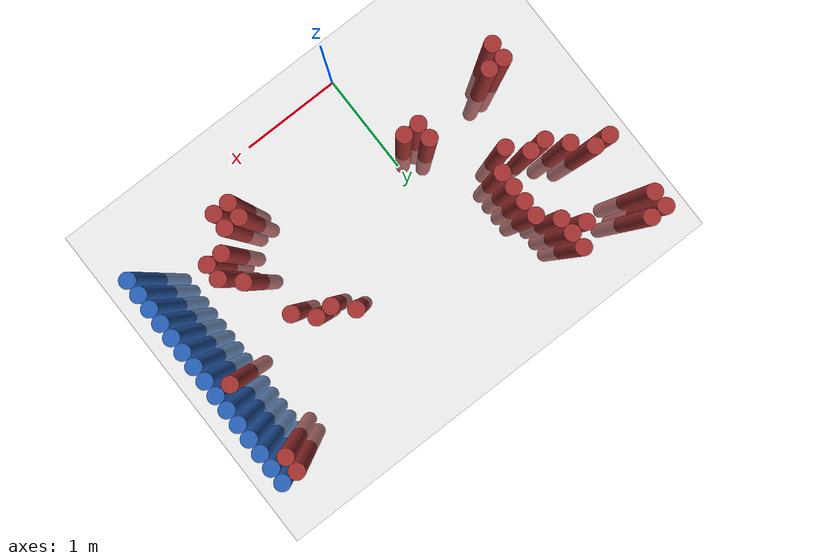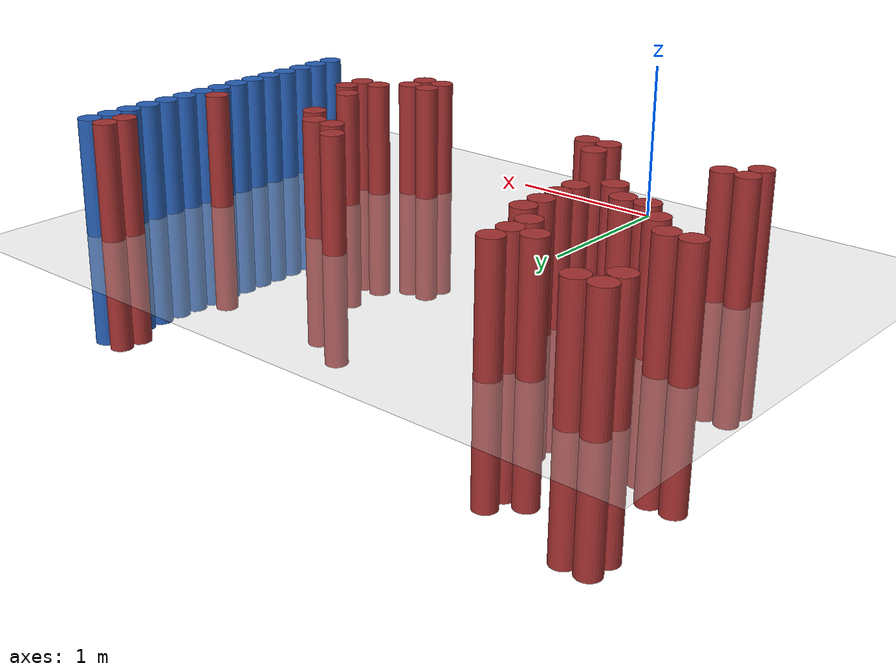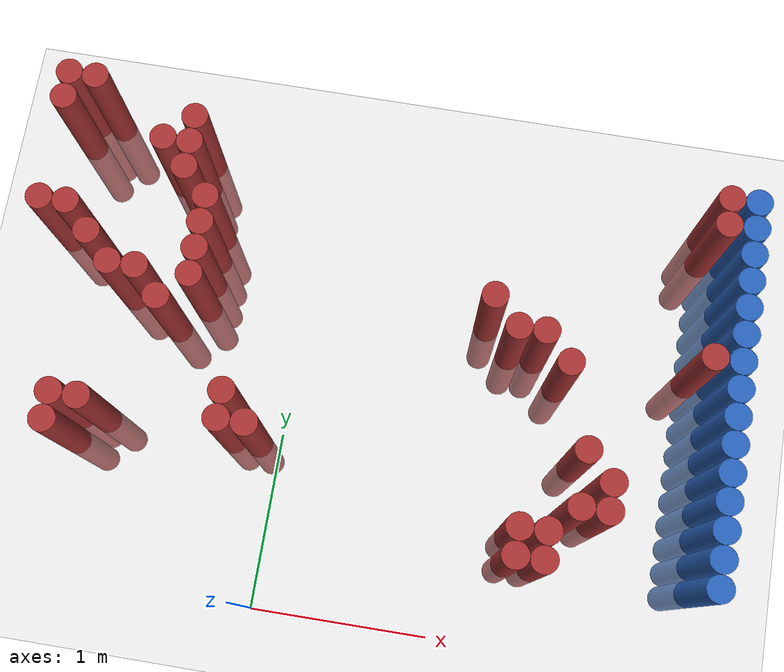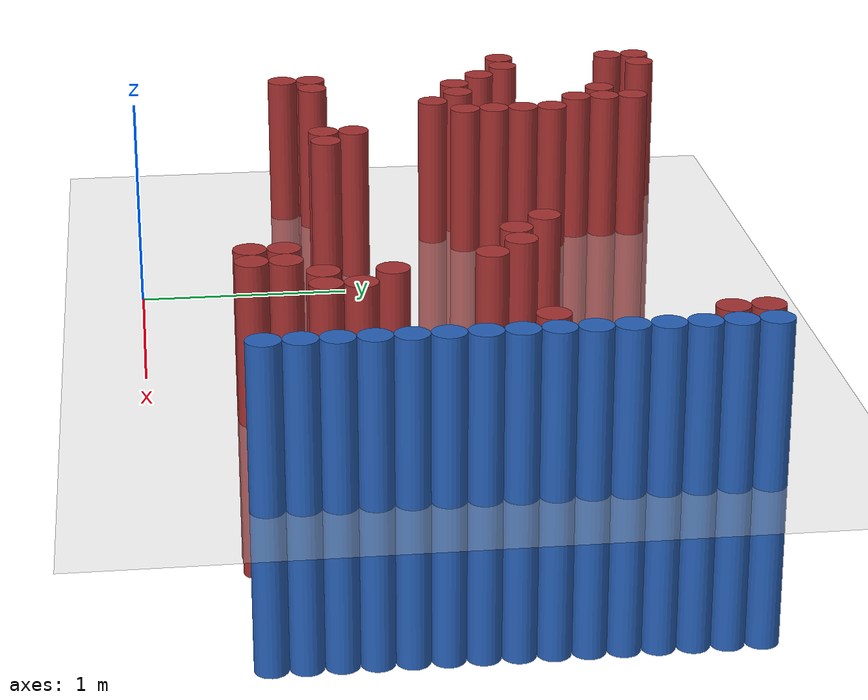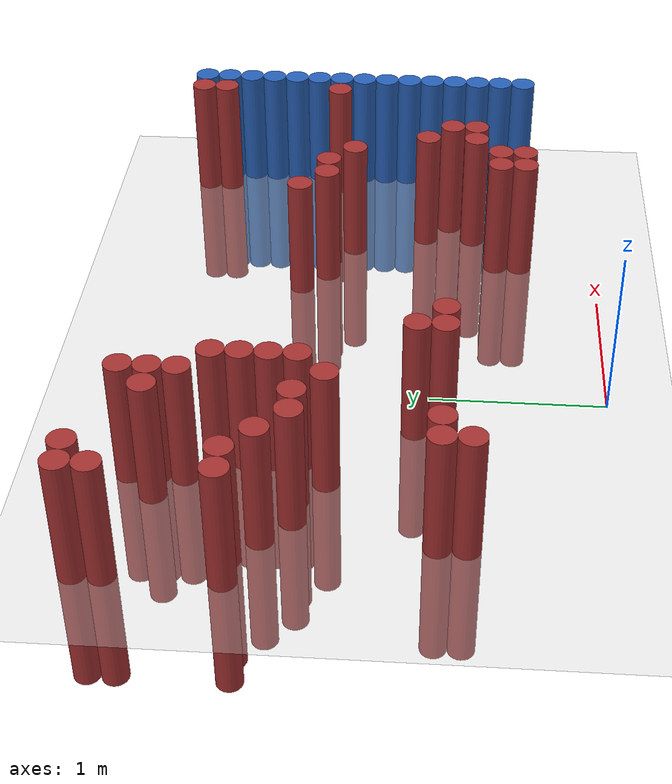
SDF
<sdf version="1.6">
 <world name="default">
  <model name="ground_plane">
   <static>1</static>
   <link name="link">
    <collision name="collision">
     <geometry><plane><normal>0 0 1</normal><size>100 100</size></plane></geometry>
     <surface><friction><ode><mu>100</mu><mu2>50</mu2></ode></friction></surface>
    </collision>
    <visual name="visual">
     <cast_shadows>0</cast_shadows>
     <geometry><plane><normal>0 0 1</normal><size>100 100</size></plane></geometry>
     <material>
      <script><uri>file://media/materials/scripts/gazebo.material</uri><name>Gazebo/Grey</name></script>
     </material>
    </visual>
   </link>
  </model>
  <model name="unit_cylinder_156">
   <static>1</static>
   <pose>-1.475000 1.975000 0.000000 0.000000 0.000000 0.000000</pose>
   <link name="link">
    <inertial>
     <mass>1</mass>
     <inertia><ixx>0.145833</ixx><ixy>0</ixy><ixz>0</ixz><iyy>0.145833</iyy><iyz>0</iyz><izz>0.125</izz></inertia>
    </inertial>
    <collision name="collision">
     <geometry><cylinder><radius>0.075000</radius><length>1.5</length></cylinder></geometry>
    </collision>
    <visual name="visual">
     <geometry><cylinder><radius>0.075000</radius><length>1.5</length></cylinder></geometry>
     <material>
      <ambient>0.648000 0.192000 0.192000 1</ambient>
      <diffuse>0.648000 0.192000 0.192000 1</diffuse>
     </material>
     <material>
      <script><name>Gazebo/Grey</name><uri>file://media/materials/scripts/gazebo.material</uri></script>
     </material>
    </visual>
   </link>
  </model>
  <model name="unit_cylinder_157">
   <static>1</static>
   <pose>-1.475000 2.575000 0.000000 0.000000 0.000000 0.000000</pose>
   <link name="link">
    <inertial>
     <mass>1</mass>
     <inertia><ixx>0.145833</ixx><ixy>0</ixy><ixz>0</ixz><iyy>0.145833</iyy><iyz>0</iyz><izz>0.125</izz></inertia>
    </inertial>
    <collision name="collision">
     <geometry><cylinder><radius>0.075000</radius><length>1.5</length></cylinder></geometry>
    </collision>
    <visual name="visual">
     <geometry><cylinder><radius>0.075000</radius><length>1.5</length></cylinder></geometry>
     <material>
      <ambient>0.648000 0.192000 0.192000 1</ambient>
      <diffuse>0.648000 0.192000 0.192000 1</diffuse>
     </material>
     <material>
      <script><name>Gazebo/Grey</name><uri>file://media/materials/scripts/gazebo.material</uri></script>
     </material>
    </visual>
   </link>
  </model>
  <model name="unit_cylinder_158">
   <static>1</static>
   <pose>-1.475000 2.725000 0.000000 0.000000 0.000000 0.000000</pose>
   <link name="link">
    <inertial>
     <mass>1</mass>
     <inertia><ixx>0.145833</ixx><ixy>0</ixy><ixz>0</ixz><iyy>0.145833</iyy><iyz>0</iyz><izz>0.125</izz></inertia>
    </inertial>
    <collision name="collision">
     <geometry><cylinder><radius>0.075000</radius><length>1.5</length></cylinder></geometry>
    </collision>
    <visual name="visual">
     <geometry><cylinder><radius>0.075000</radius><length>1.5</length></cylinder></geometry>
     <material>
      <ambient>0.648000 0.192000 0.192000 1</ambient>
      <diffuse>0.648000 0.192000 0.192000 1</diffuse>
     </material>
     <material>
      <script><name>Gazebo/Grey</name><uri>file://media/materials/scripts/gazebo.material</uri></script>
     </material>
    </visual>
   </link>
  </model>
  <model name="unit_cylinder_162">
   <static>1</static>
   <pose>-1.325000 1.975000 0.000000 0.000000 0.000000 0.000000</pose>
   <link name="link">
    <inertial>
     <mass>1</mass>
     <inertia><ixx>0.145833</ixx><ixy>0</ixy><ixz>0</ixz><iyy>0.145833</iyy><iyz>0</iyz><izz>0.125</izz></inertia>
    </inertial>
    <collision name="collision">
     <geometry><cylinder><radius>0.075000</radius><length>1.5</length></cylinder></geometry>
    </collision>
    <visual name="visual">
     <geometry><cylinder><radius>0.075000</radius><length>1.5</length></cylinder></geometry>
     <material>
      <ambient>0.648000 0.192000 0.192000 1</ambient>
      <diffuse>0.648000 0.192000 0.192000 1</diffuse>
     </material>
     <material>
      <script><name>Gazebo/Grey</name><uri>file://media/materials/scripts/gazebo.material</uri></script>
     </material>
    </visual>
   </link>
  </model>
  <model name="unit_cylinder_163">
   <static>1</static>
   <pose>-1.325000 2.725000 0.000000 0.000000 0.000000 0.000000</pose>
   <link name="link">
    <inertial>
     <mass>1</mass>
     <inertia><ixx>0.145833</ixx><ixy>0</ixy><ixz>0</ixz><iyy>0.145833</iyy><iyz>0</iyz><izz>0.125</izz></inertia>
    </inertial>
    <collision name="collision">
     <geometry><cylinder><radius>0.075000</radius><length>1.5</length></cylinder></geometry>
    </collision>
    <visual name="visual">
     <geometry><cylinder><radius>0.075000</radius><length>1.5</length></cylinder></geometry>
     <material>
      <ambient>0.648000 0.192000 0.192000 1</ambient>
      <diffuse>0.648000 0.192000 0.192000 1</diffuse>
     </material>
     <material>
      <script><name>Gazebo/Grey</name><uri>file://media/materials/scripts/gazebo.material</uri></script>
     </material>
    </visual>
   </link>
  </model>
  <model name="unit_cylinder_165">
   <static>1</static>
   <pose>-1.175000 0.775000 0.000000 0.000000 0.000000 0.000000</pose>
   <link name="link">
    <inertial>
     <mass>1</mass>
     <inertia><ixx>0.145833</ixx><ixy>0</ixy><ixz>0</ixz><iyy>0.145833</iyy><iyz>0</iyz><izz>0.125</izz></inertia>
    </inertial>
    <collision name="collision">
     <geometry><cylinder><radius>0.075000</radius><length>1.5</length></cylinder></geometry>
    </collision>
    <visual name="visual">
     <geometry><cylinder><radius>0.075000</radius><length>1.5</length></cylinder></geometry>
     <material>
      <ambient>0.648000 0.192000 0.192000 1</ambient>
      <diffuse>0.648000 0.192000 0.192000 1</diffuse>
     </material>
     <material>
      <script><name>Gazebo/Grey</name><uri>file://media/materials/scripts/gazebo.material</uri></script>
     </material>
    </visual>
   </link>
  </model>
  <model name="unit_cylinder_166">
   <static>1</static>
   <pose>-1.175000 0.925000 0.000000 0.000000 0.000000 0.000000</pose>
   <link name="link">
    <inertial>
     <mass>1</mass>
     <inertia><ixx>0.145833</ixx><ixy>0</ixy><ixz>0</ixz><iyy>0.145833</iyy><iyz>0</iyz><izz>0.125</izz></inertia>
    </inertial>
    <collision name="collision">
     <geometry><cylinder><radius>0.075000</radius><length>1.5</length></cylinder></geometry>
    </collision>
    <visual name="visual">
     <geometry><cylinder><radius>0.075000</radius><length>1.5</length></cylinder></geometry>
     <material>
      <ambient>0.648000 0.192000 0.192000 1</ambient>
      <diffuse>0.648000 0.192000 0.192000 1</diffuse>
     </material>
     <material>
      <script><name>Gazebo/Grey</name><uri>file://media/materials/scripts/gazebo.material</uri></script>
     </material>
    </visual>
   </link>
  </model>
  <model name="unit_cylinder_167">
   <static>1</static>
   <pose>-1.175000 1.825000 0.000000 0.000000 0.000000 0.000000</pose>
   <link name="link">
    <inertial>
     <mass>1</mass>
     <inertia><ixx>0.145833</ixx><ixy>0</ixy><ixz>0</ixz><iyy>0.145833</iyy><iyz>0</iyz><izz>0.125</izz></inertia>
    </inertial>
    <collision name="collision">
     <geometry><cylinder><radius>0.075000</radius><length>1.5</length></cylinder></geometry>
    </collision>
    <visual name="visual">
     <geometry><cylinder><radius>0.075000</radius><length>1.5</length></cylinder></geometry>
     <material>
      <ambient>0.648000 0.192000 0.192000 1</ambient>
      <diffuse>0.648000 0.192000 0.192000 1</diffuse>
     </material>
     <material>
      <script><name>Gazebo/Grey</name><uri>file://media/materials/scripts/gazebo.material</uri></script>
     </material>
    </visual>
   </link>
  </model>
  <model name="unit_cylinder_169">
   <static>1</static>
   <pose>-1.025000 0.925000 0.000000 0.000000 0.000000 0.000000</pose>
   <link name="link">
    <inertial>
     <mass>1</mass>
     <inertia><ixx>0.145833</ixx><ixy>0</ixy><ixz>0</ixz><iyy>0.145833</iyy><iyz>0</iyz><izz>0.125</izz></inertia>
    </inertial>
    <collision name="collision">
     <geometry><cylinder><radius>0.075000</radius><length>1.5</length></cylinder></geometry>
    </collision>
    <visual name="visual">
     <geometry><cylinder><radius>0.075000</radius><length>1.5</length></cylinder></geometry>
     <material>
      <ambient>0.648000 0.192000 0.192000 1</ambient>
      <diffuse>0.648000 0.192000 0.192000 1</diffuse>
     </material>
     <material>
      <script><name>Gazebo/Grey</name><uri>file://media/materials/scripts/gazebo.material</uri></script>
     </material>
    </visual>
   </link>
  </model>
  <model name="unit_cylinder_170">
   <static>1</static>
   <pose>-1.025000 1.675000 0.000000 0.000000 0.000000 0.000000</pose>
   <link name="link">
    <inertial>
     <mass>1</mass>
     <inertia><ixx>0.145833</ixx><ixy>0</ixy><ixz>0</ixz><iyy>0.145833</iyy><iyz>0</iyz><izz>0.125</izz></inertia>
    </inertial>
    <collision name="collision">
     <geometry><cylinder><radius>0.075000</radius><length>1.5</length></cylinder></geometry>
    </collision>
    <visual name="visual">
     <geometry><cylinder><radius>0.075000</radius><length>1.5</length></cylinder></geometry>
     <material>
      <ambient>0.648000 0.192000 0.192000 1</ambient>
      <diffuse>0.648000 0.192000 0.192000 1</diffuse>
     </material>
     <material>
      <script><name>Gazebo/Grey</name><uri>file://media/materials/scripts/gazebo.material</uri></script>
     </material>
    </visual>
   </link>
  </model>
  <model name="unit_cylinder_174">
   <static>1</static>
   <pose>-0.875000 1.675000 0.000000 0.000000 0.000000 0.000000</pose>
   <link name="link">
    <inertial>
     <mass>1</mass>
     <inertia><ixx>0.145833</ixx><ixy>0</ixy><ixz>0</ixz><iyy>0.145833</iyy><iyz>0</iyz><izz>0.125</izz></inertia>
    </inertial>
    <collision name="collision">
     <geometry><cylinder><radius>0.075000</radius><length>1.5</length></cylinder></geometry>
    </collision>
    <visual name="visual">
     <geometry><cylinder><radius>0.075000</radius><length>1.5</length></cylinder></geometry>
     <material>
      <ambient>0.648000 0.192000 0.192000 1</ambient>
      <diffuse>0.648000 0.192000 0.192000 1</diffuse>
     </material>
     <material>
      <script><name>Gazebo/Grey</name><uri>file://media/materials/scripts/gazebo.material</uri></script>
     </material>
    </visual>
   </link>
  </model>
  <model name="unit_cylinder_175">
   <static>1</static>
   <pose>-0.875000 2.425000 0.000000 0.000000 0.000000 0.000000</pose>
   <link name="link">
    <inertial>
     <mass>1</mass>
     <inertia><ixx>0.145833</ixx><ixy>0</ixy><ixz>0</ixz><iyy>0.145833</iyy><iyz>0</iyz><izz>0.125</izz></inertia>
    </inertial>
    <collision name="collision">
     <geometry><cylinder><radius>0.075000</radius><length>1.5</length></cylinder></geometry>
    </collision>
    <visual name="visual">
     <geometry><cylinder><radius>0.075000</radius><length>1.5</length></cylinder></geometry>
     <material>
      <ambient>0.648000 0.192000 0.192000 1</ambient>
      <diffuse>0.648000 0.192000 0.192000 1</diffuse>
     </material>
     <material>
      <script><name>Gazebo/Grey</name><uri>file://media/materials/scripts/gazebo.material</uri></script>
     </material>
    </visual>
   </link>
  </model>
  <model name="unit_cylinder_178">
   <static>1</static>
   <pose>-0.725000 1.525000 0.000000 0.000000 0.000000 0.000000</pose>
   <link name="link">
    <inertial>
     <mass>1</mass>
     <inertia><ixx>0.145833</ixx><ixy>0</ixy><ixz>0</ixz><iyy>0.145833</iyy><iyz>0</iyz><izz>0.125</izz></inertia>
    </inertial>
    <collision name="collision">
     <geometry><cylinder><radius>0.075000</radius><length>1.5</length></cylinder></geometry>
    </collision>
    <visual name="visual">
     <geometry><cylinder><radius>0.075000</radius><length>1.5</length></cylinder></geometry>
     <material>
      <ambient>0.648000 0.192000 0.192000 1</ambient>
      <diffuse>0.648000 0.192000 0.192000 1</diffuse>
     </material>
     <material>
      <script><name>Gazebo/Grey</name><uri>file://media/materials/scripts/gazebo.material</uri></script>
     </material>
    </visual>
   </link>
  </model>
  <model name="unit_cylinder_179">
   <static>1</static>
   <pose>-0.725000 2.275000 0.000000 0.000000 0.000000 0.000000</pose>
   <link name="link">
    <inertial>
     <mass>1</mass>
     <inertia><ixx>0.145833</ixx><ixy>0</ixy><ixz>0</ixz><iyy>0.145833</iyy><iyz>0</iyz><izz>0.125</izz></inertia>
    </inertial>
    <collision name="collision">
     <geometry><cylinder><radius>0.075000</radius><length>1.5</length></cylinder></geometry>
    </collision>
    <visual name="visual">
     <geometry><cylinder><radius>0.075000</radius><length>1.5</length></cylinder></geometry>
     <material>
      <ambient>0.648000 0.192000 0.192000 1</ambient>
      <diffuse>0.648000 0.192000 0.192000 1</diffuse>
     </material>
     <material>
      <script><name>Gazebo/Grey</name><uri>file://media/materials/scripts/gazebo.material</uri></script>
     </material>
    </visual>
   </link>
  </model>
  <model name="unit_cylinder_180">
   <static>1</static>
   <pose>-0.725000 2.425000 0.000000 0.000000 0.000000 0.000000</pose>
   <link name="link">
    <inertial>
     <mass>1</mass>
     <inertia><ixx>0.145833</ixx><ixy>0</ixy><ixz>0</ixz><iyy>0.145833</iyy><iyz>0</iyz><izz>0.125</izz></inertia>
    </inertial>
    <collision name="collision">
     <geometry><cylinder><radius>0.075000</radius><length>1.5</length></cylinder></geometry>
    </collision>
    <visual name="visual">
     <geometry><cylinder><radius>0.075000</radius><length>1.5</length></cylinder></geometry>
     <material>
      <ambient>0.648000 0.192000 0.192000 1</ambient>
      <diffuse>0.648000 0.192000 0.192000 1</diffuse>
     </material>
     <material>
      <script><name>Gazebo/Grey</name><uri>file://media/materials/scripts/gazebo.material</uri></script>
     </material>
    </visual>
   </link>
  </model>
  <model name="unit_cylinder_181">
   <static>1</static>
   <pose>-0.725000 2.575000 0.000000 0.000000 0.000000 0.000000</pose>
   <link name="link">
    <inertial>
     <mass>1</mass>
     <inertia><ixx>0.145833</ixx><ixy>0</ixy><ixz>0</ixz><iyy>0.145833</iyy><iyz>0</iyz><izz>0.125</izz></inertia>
    </inertial>
    <collision name="collision">
     <geometry><cylinder><radius>0.075000</radius><length>1.5</length></cylinder></geometry>
    </collision>
    <visual name="visual">
     <geometry><cylinder><radius>0.075000</radius><length>1.5</length></cylinder></geometry>
     <material>
      <ambient>0.648000 0.192000 0.192000 1</ambient>
      <diffuse>0.648000 0.192000 0.192000 1</diffuse>
     </material>
     <material>
      <script><name>Gazebo/Grey</name><uri>file://media/materials/scripts/gazebo.material</uri></script>
     </material>
    </visual>
   </link>
  </model>
  <model name="unit_cylinder_183">
   <static>1</static>
   <pose>-0.575000 1.675000 0.000000 0.000000 0.000000 0.000000</pose>
   <link name="link">
    <inertial>
     <mass>1</mass>
     <inertia><ixx>0.145833</ixx><ixy>0</ixy><ixz>0</ixz><iyy>0.145833</iyy><iyz>0</iyz><izz>0.125</izz></inertia>
    </inertial>
    <collision name="collision">
     <geometry><cylinder><radius>0.075000</radius><length>1.5</length></cylinder></geometry>
    </collision>
    <visual name="visual">
     <geometry><cylinder><radius>0.075000</radius><length>1.5</length></cylinder></geometry>
     <material>
      <ambient>0.648000 0.192000 0.192000 1</ambient>
      <diffuse>0.648000 0.192000 0.192000 1</diffuse>
     </material>
     <material>
      <script><name>Gazebo/Grey</name><uri>file://media/materials/scripts/gazebo.material</uri></script>
     </material>
    </visual>
   </link>
  </model>
  <model name="unit_cylinder_184">
   <static>1</static>
   <pose>-0.575000 1.825000 0.000000 0.000000 0.000000 0.000000</pose>
   <link name="link">
    <inertial>
     <mass>1</mass>
     <inertia><ixx>0.145833</ixx><ixy>0</ixy><ixz>0</ixz><iyy>0.145833</iyy><iyz>0</iyz><izz>0.125</izz></inertia>
    </inertial>
    <collision name="collision">
     <geometry><cylinder><radius>0.075000</radius><length>1.5</length></cylinder></geometry>
    </collision>
    <visual name="visual">
     <geometry><cylinder><radius>0.075000</radius><length>1.5</length></cylinder></geometry>
     <material>
      <ambient>0.648000 0.192000 0.192000 1</ambient>
      <diffuse>0.648000 0.192000 0.192000 1</diffuse>
     </material>
     <material>
      <script><name>Gazebo/Grey</name><uri>file://media/materials/scripts/gazebo.material</uri></script>
     </material>
    </visual>
   </link>
  </model>
  <model name="unit_cylinder_185">
   <static>1</static>
   <pose>-0.575000 1.975000 0.000000 0.000000 0.000000 0.000000</pose>
   <link name="link">
    <inertial>
     <mass>1</mass>
     <inertia><ixx>0.145833</ixx><ixy>0</ixy><ixz>0</ixz><iyy>0.145833</iyy><iyz>0</iyz><izz>0.125</izz></inertia>
    </inertial>
    <collision name="collision">
     <geometry><cylinder><radius>0.075000</radius><length>1.5</length></cylinder></geometry>
    </collision>
    <visual name="visual">
     <geometry><cylinder><radius>0.075000</radius><length>1.5</length></cylinder></geometry>
     <material>
      <ambient>0.648000 0.192000 0.192000 1</ambient>
      <diffuse>0.648000 0.192000 0.192000 1</diffuse>
     </material>
     <material>
      <script><name>Gazebo/Grey</name><uri>file://media/materials/scripts/gazebo.material</uri></script>
     </material>
    </visual>
   </link>
  </model>
  <model name="unit_cylinder_186">
   <static>1</static>
   <pose>-0.575000 2.125000 0.000000 0.000000 0.000000 0.000000</pose>
   <link name="link">
    <inertial>
     <mass>1</mass>
     <inertia><ixx>0.145833</ixx><ixy>0</ixy><ixz>0</ixz><iyy>0.145833</iyy><iyz>0</iyz><izz>0.125</izz></inertia>
    </inertial>
    <collision name="collision">
     <geometry><cylinder><radius>0.075000</radius><length>1.5</length></cylinder></geometry>
    </collision>
    <visual name="visual">
     <geometry><cylinder><radius>0.075000</radius><length>1.5</length></cylinder></geometry>
     <material>
      <ambient>0.648000 0.192000 0.192000 1</ambient>
      <diffuse>0.648000 0.192000 0.192000 1</diffuse>
     </material>
     <material>
      <script><name>Gazebo/Grey</name><uri>file://media/materials/scripts/gazebo.material</uri></script>
     </material>
    </visual>
   </link>
  </model>
  <model name="unit_cylinder_187">
   <static>1</static>
   <pose>-0.275000 0.925000 0.000000 0.000000 0.000000 0.000000</pose>
   <link name="link">
    <inertial>
     <mass>1</mass>
     <inertia><ixx>0.145833</ixx><ixy>0</ixy><ixz>0</ixz><iyy>0.145833</iyy><iyz>0</iyz><izz>0.125</izz></inertia>
    </inertial>
    <collision name="collision">
     <geometry><cylinder><radius>0.075000</radius><length>1.5</length></cylinder></geometry>
    </collision>
    <visual name="visual">
     <geometry><cylinder><radius>0.075000</radius><length>1.5</length></cylinder></geometry>
     <material>
      <ambient>0.648000 0.192000 0.192000 1</ambient>
      <diffuse>0.648000 0.192000 0.192000 1</diffuse>
     </material>
     <material>
      <script><name>Gazebo/Grey</name><uri>file://media/materials/scripts/gazebo.material</uri></script>
     </material>
    </visual>
   </link>
  </model>
  <model name="unit_cylinder_188">
   <static>1</static>
   <pose>-0.275000 1.075000 0.000000 0.000000 0.000000 0.000000</pose>
   <link name="link">
    <inertial>
     <mass>1</mass>
     <inertia><ixx>0.145833</ixx><ixy>0</ixy><ixz>0</ixz><iyy>0.145833</iyy><iyz>0</iyz><izz>0.125</izz></inertia>
    </inertial>
    <collision name="collision">
     <geometry><cylinder><radius>0.075000</radius><length>1.5</length></cylinder></geometry>
    </collision>
    <visual name="visual">
     <geometry><cylinder><radius>0.075000</radius><length>1.5</length></cylinder></geometry>
     <material>
      <ambient>0.648000 0.192000 0.192000 1</ambient>
      <diffuse>0.648000 0.192000 0.192000 1</diffuse>
     </material>
     <material>
      <script><name>Gazebo/Grey</name><uri>file://media/materials/scripts/gazebo.material</uri></script>
     </material>
    </visual>
   </link>
  </model>
  <model name="unit_cylinder_190">
   <static>1</static>
   <pose>-0.125000 0.925000 0.000000 0.000000 0.000000 0.000000</pose>
   <link name="link">
    <inertial>
     <mass>1</mass>
     <inertia><ixx>0.145833</ixx><ixy>0</ixy><ixz>0</ixz><iyy>0.145833</iyy><iyz>0</iyz><izz>0.125</izz></inertia>
    </inertial>
    <collision name="collision">
     <geometry><cylinder><radius>0.075000</radius><length>1.5</length></cylinder></geometry>
    </collision>
    <visual name="visual">
     <geometry><cylinder><radius>0.075000</radius><length>1.5</length></cylinder></geometry>
     <material>
      <ambient>0.648000 0.192000 0.192000 1</ambient>
      <diffuse>0.648000 0.192000 0.192000 1</diffuse>
     </material>
     <material>
      <script><name>Gazebo/Grey</name><uri>file://media/materials/scripts/gazebo.material</uri></script>
     </material>
    </visual>
   </link>
  </model>
  <model name="unit_cylinder_210">
   <static>1</static>
   <pose>1.075000 1.825000 0.000000 0.000000 0.000000 0.000000</pose>
   <link name="link">
    <inertial>
     <mass>1</mass>
     <inertia><ixx>0.145833</ixx><ixy>0</ixy><ixz>0</ixz><iyy>0.145833</iyy><iyz>0</iyz><izz>0.125</izz></inertia>
    </inertial>
    <collision name="collision">
     <geometry><cylinder><radius>0.075000</radius><length>1.5</length></cylinder></geometry>
    </collision>
    <visual name="visual">
     <geometry><cylinder><radius>0.075000</radius><length>1.5</length></cylinder></geometry>
     <material>
      <ambient>0.648000 0.192000 0.192000 1</ambient>
      <diffuse>0.648000 0.192000 0.192000 1</diffuse>
     </material>
     <material>
      <script><name>Gazebo/Grey</name><uri>file://media/materials/scripts/gazebo.material</uri></script>
     </material>
    </visual>
   </link>
  </model>
  <model name="unit_cylinder_211">
   <static>1</static>
   <pose>1.225000 1.675000 0.000000 0.000000 0.000000 0.000000</pose>
   <link name="link">
    <inertial>
     <mass>1</mass>
     <inertia><ixx>0.145833</ixx><ixy>0</ixy><ixz>0</ixz><iyy>0.145833</iyy><iyz>0</iyz><izz>0.125</izz></inertia>
    </inertial>
    <collision name="collision">
     <geometry><cylinder><radius>0.075000</radius><length>1.5</length></cylinder></geometry>
    </collision>
    <visual name="visual">
     <geometry><cylinder><radius>0.075000</radius><length>1.5</length></cylinder></geometry>
     <material>
      <ambient>0.648000 0.192000 0.192000 1</ambient>
      <diffuse>0.648000 0.192000 0.192000 1</diffuse>
     </material>
     <material>
      <script><name>Gazebo/Grey</name><uri>file://media/materials/scripts/gazebo.material</uri></script>
     </material>
    </visual>
   </link>
  </model>
  <model name="unit_cylinder_214">
   <static>1</static>
   <pose>1.375000 0.475000 0.000000 0.000000 0.000000 0.000000</pose>
   <link name="link">
    <inertial>
     <mass>1</mass>
     <inertia><ixx>0.145833</ixx><ixy>0</ixy><ixz>0</ixz><iyy>0.145833</iyy><iyz>0</iyz><izz>0.125</izz></inertia>
    </inertial>
    <collision name="collision">
     <geometry><cylinder><radius>0.075000</radius><length>1.5</length></cylinder></geometry>
    </collision>
    <visual name="visual">
     <geometry><cylinder><radius>0.075000</radius><length>1.5</length></cylinder></geometry>
     <material>
      <ambient>0.648000 0.192000 0.192000 1</ambient>
      <diffuse>0.648000 0.192000 0.192000 1</diffuse>
     </material>
     <material>
      <script><name>Gazebo/Grey</name><uri>file://media/materials/scripts/gazebo.material</uri></script>
     </material>
    </visual>
   </link>
  </model>
  <model name="unit_cylinder_215">
   <static>1</static>
   <pose>1.375000 0.625000 0.000000 0.000000 0.000000 0.000000</pose>
   <link name="link">
    <inertial>
     <mass>1</mass>
     <inertia><ixx>0.145833</ixx><ixy>0</ixy><ixz>0</ixz><iyy>0.145833</iyy><iyz>0</iyz><izz>0.125</izz></inertia>
    </inertial>
    <collision name="collision">
     <geometry><cylinder><radius>0.075000</radius><length>1.5</length></cylinder></geometry>
    </collision>
    <visual name="visual">
     <geometry><cylinder><radius>0.075000</radius><length>1.5</length></cylinder></geometry>
     <material>
      <ambient>0.648000 0.192000 0.192000 1</ambient>
      <diffuse>0.648000 0.192000 0.192000 1</diffuse>
     </material>
     <material>
      <script><name>Gazebo/Grey</name><uri>file://media/materials/scripts/gazebo.material</uri></script>
     </material>
    </visual>
   </link>
  </model>
  <model name="unit_cylinder_216">
   <static>1</static>
   <pose>1.375000 1.675000 0.000000 0.000000 0.000000 0.000000</pose>
   <link name="link">
    <inertial>
     <mass>1</mass>
     <inertia><ixx>0.145833</ixx><ixy>0</ixy><ixz>0</ixz><iyy>0.145833</iyy><iyz>0</iyz><izz>0.125</izz></inertia>
    </inertial>
    <collision name="collision">
     <geometry><cylinder><radius>0.075000</radius><length>1.5</length></cylinder></geometry>
    </collision>
    <visual name="visual">
     <geometry><cylinder><radius>0.075000</radius><length>1.5</length></cylinder></geometry>
     <material>
      <ambient>0.648000 0.192000 0.192000 1</ambient>
      <diffuse>0.648000 0.192000 0.192000 1</diffuse>
     </material>
     <material>
      <script><name>Gazebo/Grey</name><uri>file://media/materials/scripts/gazebo.material</uri></script>
     </material>
    </visual>
   </link>
  </model>
  <model name="unit_cylinder_218">
   <static>1</static>
   <pose>1.525000 0.475000 0.000000 0.000000 0.000000 0.000000</pose>
   <link name="link">
    <inertial>
     <mass>1</mass>
     <inertia><ixx>0.145833</ixx><ixy>0</ixy><ixz>0</ixz><iyy>0.145833</iyy><iyz>0</iyz><izz>0.125</izz></inertia>
    </inertial>
    <collision name="collision">
     <geometry><cylinder><radius>0.075000</radius><length>1.5</length></cylinder></geometry>
    </collision>
    <visual name="visual">
     <geometry><cylinder><radius>0.075000</radius><length>1.5</length></cylinder></geometry>
     <material>
      <ambient>0.648000 0.192000 0.192000 1</ambient>
      <diffuse>0.648000 0.192000 0.192000 1</diffuse>
     </material>
     <material>
      <script><name>Gazebo/Grey</name><uri>file://media/materials/scripts/gazebo.material</uri></script>
     </material>
    </visual>
   </link>
  </model>
  <model name="unit_cylinder_219">
   <static>1</static>
   <pose>1.525000 0.625000 0.000000 0.000000 0.000000 0.000000</pose>
   <link name="link">
    <inertial>
     <mass>1</mass>
     <inertia><ixx>0.145833</ixx><ixy>0</ixy><ixz>0</ixz><iyy>0.145833</iyy><iyz>0</iyz><izz>0.125</izz></inertia>
    </inertial>
    <collision name="collision">
     <geometry><cylinder><radius>0.075000</radius><length>1.5</length></cylinder></geometry>
    </collision>
    <visual name="visual">
     <geometry><cylinder><radius>0.075000</radius><length>1.5</length></cylinder></geometry>
     <material>
      <ambient>0.648000 0.192000 0.192000 1</ambient>
      <diffuse>0.648000 0.192000 0.192000 1</diffuse>
     </material>
     <material>
      <script><name>Gazebo/Grey</name><uri>file://media/materials/scripts/gazebo.material</uri></script>
     </material>
    </visual>
   </link>
  </model>
  <model name="unit_cylinder_220">
   <static>1</static>
   <pose>1.525000 1.525000 0.000000 0.000000 0.000000 0.000000</pose>
   <link name="link">
    <inertial>
     <mass>1</mass>
     <inertia><ixx>0.145833</ixx><ixy>0</ixy><ixz>0</ixz><iyy>0.145833</iyy><iyz>0</iyz><izz>0.125</izz></inertia>
    </inertial>
    <collision name="collision">
     <geometry><cylinder><radius>0.075000</radius><length>1.5</length></cylinder></geometry>
    </collision>
    <visual name="visual">
     <geometry><cylinder><radius>0.075000</radius><length>1.5</length></cylinder></geometry>
     <material>
      <ambient>0.648000 0.192000 0.192000 1</ambient>
      <diffuse>0.648000 0.192000 0.192000 1</diffuse>
     </material>
     <material>
      <script><name>Gazebo/Grey</name><uri>file://media/materials/scripts/gazebo.material</uri></script>
     </material>
    </visual>
   </link>
  </model>
  <model name="unit_cylinder_221">
   <static>1</static>
   <pose>1.675000 0.775000 0.000000 0.000000 0.000000 0.000000</pose>
   <link name="link">
    <inertial>
     <mass>1</mass>
     <inertia><ixx>0.145833</ixx><ixy>0</ixy><ixz>0</ixz><iyy>0.145833</iyy><iyz>0</iyz><izz>0.125</izz></inertia>
    </inertial>
    <collision name="collision">
     <geometry><cylinder><radius>0.075000</radius><length>1.5</length></cylinder></geometry>
    </collision>
    <visual name="visual">
     <geometry><cylinder><radius>0.075000</radius><length>1.5</length></cylinder></geometry>
     <material>
      <ambient>0.648000 0.192000 0.192000 1</ambient>
      <diffuse>0.648000 0.192000 0.192000 1</diffuse>
     </material>
     <material>
      <script><name>Gazebo/Grey</name><uri>file://media/materials/scripts/gazebo.material</uri></script>
     </material>
    </visual>
   </link>
  </model>
  <model name="unit_cylinder_222">
   <static>1</static>
   <pose>1.675000 1.075000 0.000000 0.000000 0.000000 0.000000</pose>
   <link name="link">
    <inertial>
     <mass>1</mass>
     <inertia><ixx>0.145833</ixx><ixy>0</ixy><ixz>0</ixz><iyy>0.145833</iyy><iyz>0</iyz><izz>0.125</izz></inertia>
    </inertial>
    <collision name="collision">
     <geometry><cylinder><radius>0.075000</radius><length>1.5</length></cylinder></geometry>
    </collision>
    <visual name="visual">
     <geometry><cylinder><radius>0.075000</radius><length>1.5</length></cylinder></geometry>
     <material>
      <ambient>0.648000 0.192000 0.192000 1</ambient>
      <diffuse>0.648000 0.192000 0.192000 1</diffuse>
     </material>
     <material>
      <script><name>Gazebo/Grey</name><uri>file://media/materials/scripts/gazebo.material</uri></script>
     </material>
    </visual>
   </link>
  </model>
  <model name="unit_cylinder_223">
   <static>1</static>
   <pose>1.825000 0.775000 0.000000 0.000000 0.000000 0.000000</pose>
   <link name="link">
    <inertial>
     <mass>1</mass>
     <inertia><ixx>0.145833</ixx><ixy>0</ixy><ixz>0</ixz><iyy>0.145833</iyy><iyz>0</iyz><izz>0.125</izz></inertia>
    </inertial>
    <collision name="collision">
     <geometry><cylinder><radius>0.075000</radius><length>1.5</length></cylinder></geometry>
    </collision>
    <visual name="visual">
     <geometry><cylinder><radius>0.075000</radius><length>1.5</length></cylinder></geometry>
     <material>
      <ambient>0.648000 0.192000 0.192000 1</ambient>
      <diffuse>0.648000 0.192000 0.192000 1</diffuse>
     </material>
     <material>
      <script><name>Gazebo/Grey</name><uri>file://media/materials/scripts/gazebo.material</uri></script>
     </material>
    </visual>
   </link>
  </model>
  <model name="unit_cylinder_224">
   <static>1</static>
   <pose>1.825000 0.925000 0.000000 0.000000 0.000000 0.000000</pose>
   <link name="link">
    <inertial>
     <mass>1</mass>
     <inertia><ixx>0.145833</ixx><ixy>0</ixy><ixz>0</ixz><iyy>0.145833</iyy><iyz>0</iyz><izz>0.125</izz></inertia>
    </inertial>
    <collision name="collision">
     <geometry><cylinder><radius>0.075000</radius><length>1.5</length></cylinder></geometry>
    </collision>
    <visual name="visual">
     <geometry><cylinder><radius>0.075000</radius><length>1.5</length></cylinder></geometry>
     <material>
      <ambient>0.648000 0.192000 0.192000 1</ambient>
      <diffuse>0.648000 0.192000 0.192000 1</diffuse>
     </material>
     <material>
      <script><name>Gazebo/Grey</name><uri>file://media/materials/scripts/gazebo.material</uri></script>
     </material>
    </visual>
   </link>
  </model>
  <model name="unit_cylinder_230">
   <static>1</static>
   <pose>2.275000 1.675000 0.000000 0.000000 0.000000 0.000000</pose>
   <link name="link">
    <inertial>
     <mass>1</mass>
     <inertia><ixx>0.145833</ixx><ixy>0</ixy><ixz>0</ixz><iyy>0.145833</iyy><iyz>0</iyz><izz>0.125</izz></inertia>
    </inertial>
    <collision name="collision">
     <geometry><cylinder><radius>0.075000</radius><length>1.5</length></cylinder></geometry>
    </collision>
    <visual name="visual">
     <geometry><cylinder><radius>0.075000</radius><length>1.5</length></cylinder></geometry>
     <material>
      <ambient>0.648000 0.192000 0.192000 1</ambient>
      <diffuse>0.648000 0.192000 0.192000 1</diffuse>
     </material>
     <material>
      <script><name>Gazebo/Grey</name><uri>file://media/materials/scripts/gazebo.material</uri></script>
     </material>
    </visual>
   </link>
  </model>
  <model name="unit_cylinder_231">
   <static>1</static>
   <pose>2.275000 2.425000 0.000000 0.000000 0.000000 0.000000</pose>
   <link name="link">
    <inertial>
     <mass>1</mass>
     <inertia><ixx>0.145833</ixx><ixy>0</ixy><ixz>0</ixz><iyy>0.145833</iyy><iyz>0</iyz><izz>0.125</izz></inertia>
    </inertial>
    <collision name="collision">
     <geometry><cylinder><radius>0.075000</radius><length>1.5</length></cylinder></geometry>
    </collision>
    <visual name="visual">
     <geometry><cylinder><radius>0.075000</radius><length>1.5</length></cylinder></geometry>
     <material>
      <ambient>0.648000 0.192000 0.192000 1</ambient>
      <diffuse>0.648000 0.192000 0.192000 1</diffuse>
     </material>
     <material>
      <script><name>Gazebo/Grey</name><uri>file://media/materials/scripts/gazebo.material</uri></script>
     </material>
    </visual>
   </link>
  </model>
  <model name="unit_cylinder_232">
   <static>1</static>
   <pose>2.275000 2.575000 0.000000 0.000000 0.000000 0.000000</pose>
   <link name="link">
    <inertial>
     <mass>1</mass>
     <inertia><ixx>0.145833</ixx><ixy>0</ixy><ixz>0</ixz><iyy>0.145833</iyy><iyz>0</iyz><izz>0.125</izz></inertia>
    </inertial>
    <collision name="collision">
     <geometry><cylinder><radius>0.075000</radius><length>1.5</length></cylinder></geometry>
    </collision>
    <visual name="visual">
     <geometry><cylinder><radius>0.075000</radius><length>1.5</length></cylinder></geometry>
     <material>
      <ambient>0.648000 0.192000 0.192000 1</ambient>
      <diffuse>0.648000 0.192000 0.192000 1</diffuse>
     </material>
     <material>
      <script><name>Gazebo/Grey</name><uri>file://media/materials/scripts/gazebo.material</uri></script>
     </material>
    </visual>
   </link>
  </model>
  <model name="unit_cylinder_241">
   <static>1</static>
   <pose>2.425000 0.475000 0.000000 0.000000 0.000000 0.000000</pose>
   <link name="link">
    <inertial>
     <mass>1</mass>
     <inertia><ixx>0.145833</ixx><ixy>0</ixy><ixz>0</ixz><iyy>0.145833</iyy><iyz>0</iyz><izz>0.125</izz></inertia>
    </inertial>
    <collision name="collision">
     <geometry><cylinder><radius>0.075000</radius><length>1.5</length></cylinder></geometry>
    </collision>
    <visual name="visual">
     <geometry><cylinder><radius>0.075000</radius><length>1.5</length></cylinder></geometry>
     <material>
      <ambient>0.152000 0.379000 0.720000 1</ambient>
      <diffuse>0.152000 0.379000 0.720000 1</diffuse>
     </material>
     <material>
      <script><name>Gazebo/Grey</name><uri>file://media/materials/scripts/gazebo.material</uri></script>
     </material>
    </visual>
   </link>
  </model>
  <model name="unit_cylinder_242">
   <static>1</static>
   <pose>2.425000 0.625000 0.000000 0.000000 0.000000 0.000000</pose>
   <link name="link">
    <inertial>
     <mass>1</mass>
     <inertia><ixx>0.145833</ixx><ixy>0</ixy><ixz>0</ixz><iyy>0.145833</iyy><iyz>0</iyz><izz>0.125</izz></inertia>
    </inertial>
    <collision name="collision">
     <geometry><cylinder><radius>0.075000</radius><length>1.5</length></cylinder></geometry>
    </collision>
    <visual name="visual">
     <geometry><cylinder><radius>0.075000</radius><length>1.5</length></cylinder></geometry>
     <material>
      <ambient>0.152000 0.379000 0.720000 1</ambient>
      <diffuse>0.152000 0.379000 0.720000 1</diffuse>
     </material>
     <material>
      <script><name>Gazebo/Grey</name><uri>file://media/materials/scripts/gazebo.material</uri></script>
     </material>
    </visual>
   </link>
  </model>
  <model name="unit_cylinder_243">
   <static>1</static>
   <pose>2.425000 0.775000 0.000000 0.000000 0.000000 0.000000</pose>
   <link name="link">
    <inertial>
     <mass>1</mass>
     <inertia><ixx>0.145833</ixx><ixy>0</ixy><ixz>0</ixz><iyy>0.145833</iyy><iyz>0</iyz><izz>0.125</izz></inertia>
    </inertial>
    <collision name="collision">
     <geometry><cylinder><radius>0.075000</radius><length>1.5</length></cylinder></geometry>
    </collision>
    <visual name="visual">
     <geometry><cylinder><radius>0.075000</radius><length>1.5</length></cylinder></geometry>
     <material>
      <ambient>0.152000 0.379000 0.720000 1</ambient>
      <diffuse>0.152000 0.379000 0.720000 1</diffuse>
     </material>
     <material>
      <script><name>Gazebo/Grey</name><uri>file://media/materials/scripts/gazebo.material</uri></script>
     </material>
    </visual>
   </link>
  </model>
  <model name="unit_cylinder_244">
   <static>1</static>
   <pose>2.425000 0.925000 0.000000 0.000000 0.000000 0.000000</pose>
   <link name="link">
    <inertial>
     <mass>1</mass>
     <inertia><ixx>0.145833</ixx><ixy>0</ixy><ixz>0</ixz><iyy>0.145833</iyy><iyz>0</iyz><izz>0.125</izz></inertia>
    </inertial>
    <collision name="collision">
     <geometry><cylinder><radius>0.075000</radius><length>1.5</length></cylinder></geometry>
    </collision>
    <visual name="visual">
     <geometry><cylinder><radius>0.075000</radius><length>1.5</length></cylinder></geometry>
     <material>
      <ambient>0.152000 0.379000 0.720000 1</ambient>
      <diffuse>0.152000 0.379000 0.720000 1</diffuse>
     </material>
     <material>
      <script><name>Gazebo/Grey</name><uri>file://media/materials/scripts/gazebo.material</uri></script>
     </material>
    </visual>
   </link>
  </model>
  <model name="unit_cylinder_245">
   <static>1</static>
   <pose>2.425000 1.075000 0.000000 0.000000 0.000000 0.000000</pose>
   <link name="link">
    <inertial>
     <mass>1</mass>
     <inertia><ixx>0.145833</ixx><ixy>0</ixy><ixz>0</ixz><iyy>0.145833</iyy><iyz>0</iyz><izz>0.125</izz></inertia>
    </inertial>
    <collision name="collision">
     <geometry><cylinder><radius>0.075000</radius><length>1.5</length></cylinder></geometry>
    </collision>
    <visual name="visual">
     <geometry><cylinder><radius>0.075000</radius><length>1.5</length></cylinder></geometry>
     <material>
      <ambient>0.152000 0.379000 0.720000 1</ambient>
      <diffuse>0.152000 0.379000 0.720000 1</diffuse>
     </material>
     <material>
      <script><name>Gazebo/Grey</name><uri>file://media/materials/scripts/gazebo.material</uri></script>
     </material>
    </visual>
   </link>
  </model>
  <model name="unit_cylinder_246">
   <static>1</static>
   <pose>2.425000 1.225000 0.000000 0.000000 0.000000 0.000000</pose>
   <link name="link">
    <inertial>
     <mass>1</mass>
     <inertia><ixx>0.145833</ixx><ixy>0</ixy><ixz>0</ixz><iyy>0.145833</iyy><iyz>0</iyz><izz>0.125</izz></inertia>
    </inertial>
    <collision name="collision">
     <geometry><cylinder><radius>0.075000</radius><length>1.5</length></cylinder></geometry>
    </collision>
    <visual name="visual">
     <geometry><cylinder><radius>0.075000</radius><length>1.5</length></cylinder></geometry>
     <material>
      <ambient>0.152000 0.379000 0.720000 1</ambient>
      <diffuse>0.152000 0.379000 0.720000 1</diffuse>
     </material>
     <material>
      <script><name>Gazebo/Grey</name><uri>file://media/materials/scripts/gazebo.material</uri></script>
     </material>
    </visual>
   </link>
  </model>
  <model name="unit_cylinder_247">
   <static>1</static>
   <pose>2.425000 1.375000 0.000000 0.000000 0.000000 0.000000</pose>
   <link name="link">
    <inertial>
     <mass>1</mass>
     <inertia><ixx>0.145833</ixx><ixy>0</ixy><ixz>0</ixz><iyy>0.145833</iyy><iyz>0</iyz><izz>0.125</izz></inertia>
    </inertial>
    <collision name="collision">
     <geometry><cylinder><radius>0.075000</radius><length>1.5</length></cylinder></geometry>
    </collision>
    <visual name="visual">
     <geometry><cylinder><radius>0.075000</radius><length>1.5</length></cylinder></geometry>
     <material>
      <ambient>0.152000 0.379000 0.720000 1</ambient>
      <diffuse>0.152000 0.379000 0.720000 1</diffuse>
     </material>
     <material>
      <script><name>Gazebo/Grey</name><uri>file://media/materials/scripts/gazebo.material</uri></script>
     </material>
    </visual>
   </link>
  </model>
  <model name="unit_cylinder_248">
   <static>1</static>
   <pose>2.425000 1.525000 0.000000 0.000000 0.000000 0.000000</pose>
   <link name="link">
    <inertial>
     <mass>1</mass>
     <inertia><ixx>0.145833</ixx><ixy>0</ixy><ixz>0</ixz><iyy>0.145833</iyy><iyz>0</iyz><izz>0.125</izz></inertia>
    </inertial>
    <collision name="collision">
     <geometry><cylinder><radius>0.075000</radius><length>1.5</length></cylinder></geometry>
    </collision>
    <visual name="visual">
     <geometry><cylinder><radius>0.075000</radius><length>1.5</length></cylinder></geometry>
     <material>
      <ambient>0.152000 0.379000 0.720000 1</ambient>
      <diffuse>0.152000 0.379000 0.720000 1</diffuse>
     </material>
     <material>
      <script><name>Gazebo/Grey</name><uri>file://media/materials/scripts/gazebo.material</uri></script>
     </material>
    </visual>
   </link>
  </model>
  <model name="unit_cylinder_249">
   <static>1</static>
   <pose>2.425000 1.675000 0.000000 0.000000 0.000000 0.000000</pose>
   <link name="link">
    <inertial>
     <mass>1</mass>
     <inertia><ixx>0.145833</ixx><ixy>0</ixy><ixz>0</ixz><iyy>0.145833</iyy><iyz>0</iyz><izz>0.125</izz></inertia>
    </inertial>
    <collision name="collision">
     <geometry><cylinder><radius>0.075000</radius><length>1.5</length></cylinder></geometry>
    </collision>
    <visual name="visual">
     <geometry><cylinder><radius>0.075000</radius><length>1.5</length></cylinder></geometry>
     <material>
      <ambient>0.152000 0.379000 0.720000 1</ambient>
      <diffuse>0.152000 0.379000 0.720000 1</diffuse>
     </material>
     <material>
      <script><name>Gazebo/Grey</name><uri>file://media/materials/scripts/gazebo.material</uri></script>
     </material>
    </visual>
   </link>
  </model>
  <model name="unit_cylinder_250">
   <static>1</static>
   <pose>2.425000 1.825000 0.000000 0.000000 0.000000 0.000000</pose>
   <link name="link">
    <inertial>
     <mass>1</mass>
     <inertia><ixx>0.145833</ixx><ixy>0</ixy><ixz>0</ixz><iyy>0.145833</iyy><iyz>0</iyz><izz>0.125</izz></inertia>
    </inertial>
    <collision name="collision">
     <geometry><cylinder><radius>0.075000</radius><length>1.5</length></cylinder></geometry>
    </collision>
    <visual name="visual">
     <geometry><cylinder><radius>0.075000</radius><length>1.5</length></cylinder></geometry>
     <material>
      <ambient>0.152000 0.379000 0.720000 1</ambient>
      <diffuse>0.152000 0.379000 0.720000 1</diffuse>
     </material>
     <material>
      <script><name>Gazebo/Grey</name><uri>file://media/materials/scripts/gazebo.material</uri></script>
     </material>
    </visual>
   </link>
  </model>
  <model name="unit_cylinder_251">
   <static>1</static>
   <pose>2.425000 1.975000 0.000000 0.000000 0.000000 0.000000</pose>
   <link name="link">
    <inertial>
     <mass>1</mass>
     <inertia><ixx>0.145833</ixx><ixy>0</ixy><ixz>0</ixz><iyy>0.145833</iyy><iyz>0</iyz><izz>0.125</izz></inertia>
    </inertial>
    <collision name="collision">
     <geometry><cylinder><radius>0.075000</radius><length>1.5</length></cylinder></geometry>
    </collision>
    <visual name="visual">
     <geometry><cylinder><radius>0.075000</radius><length>1.5</length></cylinder></geometry>
     <material>
      <ambient>0.152000 0.379000 0.720000 1</ambient>
      <diffuse>0.152000 0.379000 0.720000 1</diffuse>
     </material>
     <material>
      <script><name>Gazebo/Grey</name><uri>file://media/materials/scripts/gazebo.material</uri></script>
     </material>
    </visual>
   </link>
  </model>
  <model name="unit_cylinder_252">
   <static>1</static>
   <pose>2.425000 2.125000 0.000000 0.000000 0.000000 0.000000</pose>
   <link name="link">
    <inertial>
     <mass>1</mass>
     <inertia><ixx>0.145833</ixx><ixy>0</ixy><ixz>0</ixz><iyy>0.145833</iyy><iyz>0</iyz><izz>0.125</izz></inertia>
    </inertial>
    <collision name="collision">
     <geometry><cylinder><radius>0.075000</radius><length>1.5</length></cylinder></geometry>
    </collision>
    <visual name="visual">
     <geometry><cylinder><radius>0.075000</radius><length>1.5</length></cylinder></geometry>
     <material>
      <ambient>0.152000 0.379000 0.720000 1</ambient>
      <diffuse>0.152000 0.379000 0.720000 1</diffuse>
     </material>
     <material>
      <script><name>Gazebo/Grey</name><uri>file://media/materials/scripts/gazebo.material</uri></script>
     </material>
    </visual>
   </link>
  </model>
  <model name="unit_cylinder_253">
   <static>1</static>
   <pose>2.425000 2.275000 0.000000 0.000000 0.000000 0.000000</pose>
   <link name="link">
    <inertial>
     <mass>1</mass>
     <inertia><ixx>0.145833</ixx><ixy>0</ixy><ixz>0</ixz><iyy>0.145833</iyy><iyz>0</iyz><izz>0.125</izz></inertia>
    </inertial>
    <collision name="collision">
     <geometry><cylinder><radius>0.075000</radius><length>1.5</length></cylinder></geometry>
    </collision>
    <visual name="visual">
     <geometry><cylinder><radius>0.075000</radius><length>1.5</length></cylinder></geometry>
     <material>
      <ambient>0.152000 0.379000 0.720000 1</ambient>
      <diffuse>0.152000 0.379000 0.720000 1</diffuse>
     </material>
     <material>
      <script><name>Gazebo/Grey</name><uri>file://media/materials/scripts/gazebo.material</uri></script>
     </material>
    </visual>
   </link>
  </model>
  <model name="unit_cylinder_254">
   <static>1</static>
   <pose>2.425000 2.425000 0.000000 0.000000 0.000000 0.000000</pose>
   <link name="link">
    <inertial>
     <mass>1</mass>
     <inertia><ixx>0.145833</ixx><ixy>0</ixy><ixz>0</ixz><iyy>0.145833</iyy><iyz>0</iyz><izz>0.125</izz></inertia>
    </inertial>
    <collision name="collision">
     <geometry><cylinder><radius>0.075000</radius><length>1.5</length></cylinder></geometry>
    </collision>
    <visual name="visual">
     <geometry><cylinder><radius>0.075000</radius><length>1.5</length></cylinder></geometry>
     <material>
      <ambient>0.152000 0.379000 0.720000 1</ambient>
      <diffuse>0.152000 0.379000 0.720000 1</diffuse>
     </material>
     <material>
      <script><name>Gazebo/Grey</name><uri>file://media/materials/scripts/gazebo.material</uri></script>
     </material>
    </visual>
   </link>
  </model>
  <model name="unit_cylinder_255">
   <static>1</static>
   <pose>2.425000 2.575000 0.000000 0.000000 0.000000 0.000000</pose>
   <link name="link">
    <inertial>
     <mass>1</mass>
     <inertia><ixx>0.145833</ixx><ixy>0</ixy><ixz>0</ixz><iyy>0.145833</iyy><iyz>0</iyz><izz>0.125</izz></inertia>
    </inertial>
    <collision name="collision">
     <geometry><cylinder><radius>0.075000</radius><length>1.5</length></cylinder></geometry>
    </collision>
    <visual name="visual">
     <geometry><cylinder><radius>0.075000</radius><length>1.5</length></cylinder></geometry>
     <material>
      <ambient>0.152000 0.379000 0.720000 1</ambient>
      <diffuse>0.152000 0.379000 0.720000 1</diffuse>
     </material>
     <material>
      <script><name>Gazebo/Grey</name><uri>file://media/materials/scripts/gazebo.material</uri></script>
     </material>
    </visual>
   </link>
  </model>
 </world>
</sdf>
